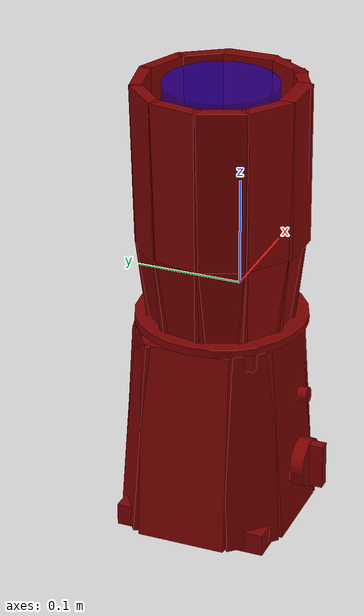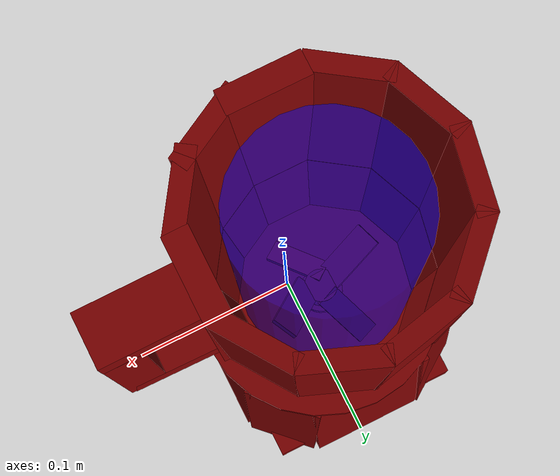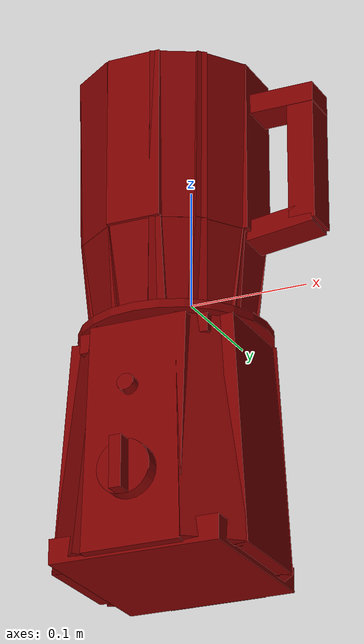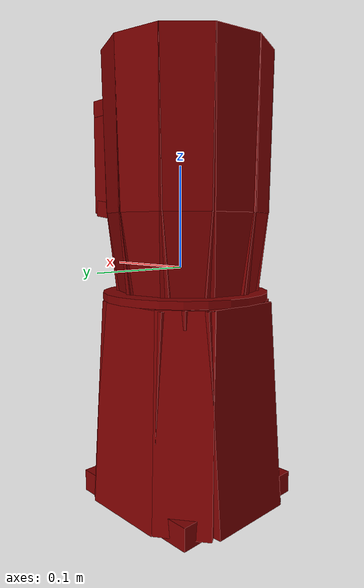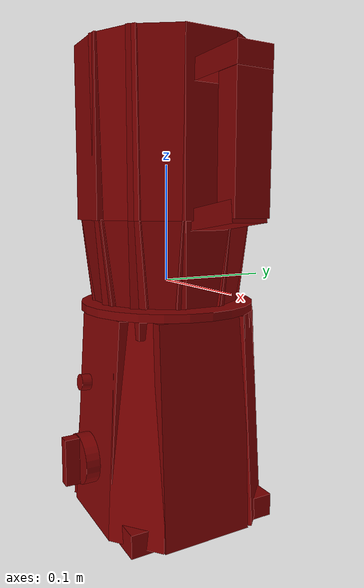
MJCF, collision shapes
<?xml version='1.0' encoding='UTF-8'?>
<mujoco model="model">
  <option timestep="0.002" gravity="0.0 0.0 -9.81"/>
  <compiler angle="radian"/>
  <asset>
    <mesh file="visuals/blade.obj" name="blade_vis"/>
    <mesh file="visuals/Body001.obj" name="Body001_vis"/>
    <mesh file="visuals/power_button.obj" name="power_button_vis"/>
    <mesh file="visuals/pitcher.obj" name="pitcher_vis"/>
    <mesh file="visuals/pitcher_main.obj" name="pitcher_main_vis"/>
    <mesh file="visuals/knob_speed.obj" name="knob_speed_vis"/>
    <texture file="visuals/T_BC001.png" name="Body001_material" type="2d"/>
    <material name="Body001_material" rgba="1 1 1 1.0" texture="Body001_material" shininess="0.4472135901451111" specular="1"/>
    <texture file="visuals/T_BC001.png" name="power_button_material" type="2d"/>
    <material name="power_button_material" rgba="1 1 1 1.0" texture="power_button_material" shininess="0.4472135901451111" specular="1"/>
    <texture file="visuals/T_BC001.png" name="pitcher_material" type="2d"/>
    <material name="pitcher_material" rgba="1 1 1 1.0" texture="pitcher_material" shininess="0.4472135901451111" specular="1"/>
    <texture file="visuals/T_BC001.png" name="blade_material" type="2d"/>
    <material name="blade_material" rgba="1 1 1 1.0" texture="blade_material" shininess="0.4472135901451111" specular="1"/>
    <material name="pitcher_main_material" rgba="0.5881999731063843 0.5881999731063843 0.5881999731063843 0.800000011920929" shininess="0.10000002384185791" specular="0.33333333333333337"/>
    <texture file="visuals/T_BC001.png" name="knob_speed_material" type="2d"/>
    <material name="knob_speed_material" rgba="1 1 1 1.0" texture="knob_speed_material" shininess="0.4472135901451111" specular="1"/>
  </asset>
  <default>
    <default class="visual">
      <geom conaffinity="0" contype="0" group="1" type="mesh"/>
    </default>
    <default class="collision">
      <geom group="0" rgba="0.5 0 0 0.5" density="1.0" solref="0.004 1" solimp="0.998 0.998 0.001"/>
    </default>
    <default class="spawn">
      <geom group="0" rgba="1 1 1 0.5" contype="0" conaffinity="0"/>
      <site group="0" rgba="1 1 1 0.5"/>
    </default>
    <default class="region">
      <geom group="1" conaffinity="0" contype="0" rgba="0 1 0 0" mass="0"/>
    </default>
  </default>
  <worldbody>
    <body>
      <body name="object">
        <geom mesh="Body001_vis" type="mesh" solimp="0.998 0.998 0.001" solref="0.001 1" friction="0.95 0.3 0.1" class="visual" material="Body001_material"/>
        <geom type="box" pos="-0.09515609 0.01476613 -0.12396966" size="0.0054743182845413685 0.04164137691259384 0.09551781415939331" quat="0.9992919564247131 0.0 0.03762416914105415 0.0" class="collision"/>
        <geom type="box" pos="-0.02070477 -0.05600017 -0.12523258" size="0.0054743182845413685 0.04164137691259384 0.09551780670881271" quat="0.706755518913269 -0.02228604629635811 0.02228604629635811 0.7067554593086243" class="collision"/>
        <geom type="box" pos="0.05176017 0.00713336 -0.12396966" size="0.005474318750202656 0.04164137691259384 0.09551782160997391" quat="7.546636027200293e-08 -0.028901977464556694 2.1820385498472206e-09 0.9995822310447693" class="collision"/>
        <geom type="box" pos="-0.01956251 0.08019558 -0.12528173" size="0.0054743182845413685 0.04164137691259384 0.09551781415939331" quat="0.7067351937294006 0.022921277210116386 0.02292126789689064 -0.7067351937294006" class="collision"/>
        <geom type="box" pos="-0.07630777 0.06757122 -0.12396966" size="0.005474318750202656 0.025623897090554237 0.09551780670881271" quat="0.8883739113807678 0.017228038981556892 0.03344782441854477 -0.4575764536857605" class="collision"/>
        <geom type="box" pos="0.03633293 0.06375368 -0.12396966" size="0.005474317818880081 0.025623897090554237 0.09551780670881271" quat="0.3789641857147217 0.02674451470375061 0.010957477614283562 -0.9249598979949951" class="collision"/>
        <geom type="box" pos="0.03317800 -0.04134386 -0.12396966" size="0.0054743182845413685 0.025623897090554237 0.09551780670881271" quat="0.4256477653980255 -0.04192516580224037 0.01974695920944214 0.9037014842033386" class="collision"/>
        <geom type="box" pos="-0.07742481 -0.03855716 -0.12396966" size="0.0054743182845413685 0.025623897090554237 0.09551780670881271" quat="0.9243523478507996 -0.017569629475474358 0.04288322851061821 0.37871503829956055" class="collision"/>
        <geom type="box" pos="-0.02167261 0.01204293 -0.21243714" size="0.0717238336801529 0.0717238336801529 0.010338559746742249" quat="1.0 0.0 0.0 0.0" class="collision"/>
        <geom type="box" pos="-0.02167261 0.01204293 -0.03638610" size="0.055709511041641235 0.055709511041641235 0.008030197583138943" quat="1.0 0.0 0.0 0.0" class="collision"/>
        <body name="power_button">
          <joint axis="0.0 1.0 0.0" pos="-0.02125863 -0.07110283 -0.08987315" limited="true" name="power_button_joint" range="0.0 0.003" type="slide" damping="1" frictionloss="1" armature=".01" stiffness="0.5" springref="-0.5"/>
          <geom mesh="power_button_vis" type="mesh" solimp="0.998 0.998 0.001" solref="0.001 1" friction="0.95 0.3 0.1" class="visual" material="power_button_material"/>
          <geom class="collision" type="cylinder" pos="-0.02125863 -0.07136320 -0.08984661" size="0.007087751291692257 0.004477208014577627" quat="0.7420973181724548 0.6702921390533447 0.0 0.0" name="power_button_main"/>
        </body>
        <body name="pitcher">
          <geom mesh="pitcher_vis" type="mesh" solimp="0.998 0.998 0.001" solref="0.001 1" friction="0.95 0.3 0.1" class="visual" material="pitcher_material"/>
          <geom type="cylinder" pos="-0.01826130 0.01058441 -0.01807209" size="0.013563878834247589 0.0030004368163645267" quat="0.70710688829422 0.0 0.0 -0.7071066498756409" class="collision"/>
          <geom class="collision" type="box" pos="0.08159569 0.01001288 0.16783240" size="0.02891906350851059 0.015560477040708065 0.008479948155581951" quat="1.0 0.0 0.0 0.0" name="pitcher_handle_1"/>
          <geom class="collision" type="box" pos="0.09916771 0.01001288 0.10729443" size="0.011199464090168476 0.015560487285256386 0.051797185093164444" quat="1.0 0.0 0.0 0.0" name="pitcher_handle_2"/>
          <geom class="collision" type="box" pos="0.07771460 0.01001288 0.05714760" size="0.02946845255792141 0.015560523606836796 0.00854925811290741" quat="0.9980339407920837 0.0 -0.06267547607421875 0.0" name="pitcher_handle_0"/>
          <geom type="cylinder" pos="-0.01792707 0.01009008 -0.02435832" size="0.07933948934078217 0.0035974886268377304" quat="1.0 0.0 0.0 0.0" class="collision"/>
          <body name="blade">
            <geom mesh="blade_vis" type="mesh" solimp="0.998 0.998 0.001" solref="0.001 1" friction="0.95 0.3 0.1" class="visual" material="blade_material"/>
            <geom type="box" pos="0.00204605 0.01669492 0.00917565" size="0.0015862119616940618 0.018787633627653122 0.008514349348843098" quat="0.22424311935901642 0.4206318259239197 -0.4267450273036957 0.7685522437095642" class="collision"/>
            <geom type="box" pos="-0.04108375 0.00226118 0.00607678" size="0.0014495250070467591 0.018787631765007973 0.00851509440690279" quat="0.46829313039779663 0.6533452272415161 -0.34451261162757874 0.48492538928985596" class="collision"/>
            <geom type="box" pos="-0.01246180 -0.01041368 -0.00240662" size="0.0014507644809782505 0.018769260495901108 0.00669638067483902" quat="0.3194257915019989 -0.6354911923408508 -0.12435971200466156 -0.6918473839759827" class="collision"/>
            <geom type="box" pos="-0.02522345 0.03246708 -0.00698720" size="0.001831724657677114 0.01876925863325596 0.007409302052110434" quat="0.037183113396167755 0.6721182465553284 0.3039575219154358 0.67415452003479" class="collision"/>
            <geom type="cylinder" pos="-0.01812364 0.01042146 -0.00537061" size="0.010318148881196976 0.008342823013663292" quat="1.0 0.0 0.0 0.0" class="collision"/>
          </body>
          <body name="pitcher_main">
            <geom class="region" type="cylinder" size="0.05175633355975151 0.08882526308298111" pos="-0.02064804 0.00991137 0.11059178" rgba="0 0 1 0.5" name="reg_int"/>
            <geom mesh="pitcher_main_vis" type="mesh" solimp="0.998 0.998 0.001" solref="0.001 1" friction="0.95 0.3 0.1" class="visual" material="pitcher_main_material"/>
            <geom type="box" pos="-0.02086875 -0.05912482 0.12695498" size="0.023175766691565514 0.007076061796396971 0.07389082759618759" quat="1.0 0.0 0.0 0.0" class="collision"/>
            <geom type="box" pos="-0.02086875 -0.05295889 0.01770921" size="0.023175908252596855 0.005516691133379936 0.03700769692659378" quat="0.9981673955917358 0.06051315739750862 0.0 0.0" class="collision"/>
            <geom type="box" pos="-0.06003613 -0.04693161 0.12695498" size="0.023175911977887154 0.005516692530363798 0.07379065454006195" quat="0.9549254775047302 0.010099019855260849 -0.003137363586574793 -0.2966572344303131" class="collision"/>
            <geom type="box" pos="-0.05654230 -0.04185108 0.01770921" size="0.023175908252596855 0.005516690202057362 0.03700769692659378" quat="0.953228771686554 0.05778857693076134 -0.017952607944607735 -0.29613015055656433" class="collision"/>
            <geom type="box" pos="-0.07916146 -0.01370328 0.01770921" size="0.023175908252596855 0.005516691133379936 0.03700769692659378" quat="0.8282976746559143 0.05021476000547409 -0.03376825898885727 -0.5570108890533447" class="collision"/>
            <geom type="box" pos="-0.08487194 -0.01602906 0.12695498" size="0.023175911977887154 0.005516692530363798 0.07379065454006195" quat="0.8297720551490784 0.008775432594120502 -0.0059012724086642265 -0.558002233505249" class="collision"/>
            <geom type="box" pos="-0.08871573 0.02308562 0.12695498" size="0.023175911977887154 0.0055166929960250854 0.07379065454006195" quat="0.6369348168373108 0.006736038718372583 -0.008152233436703682 -0.7708451151847839" class="collision"/>
            <geom type="box" pos="-0.08266037 0.02192311 0.01770921" size="0.023175908252596855 0.005516691133379936 0.03700769692659378" quat="0.6358030438423157 0.03854496777057648 -0.04664872959256172 -0.7694755792617798" class="collision"/>
            <geom type="box" pos="-0.06591754 0.05396626 0.01770921" size="0.023175908252596855 0.005516690202057362 0.03700769692659378" quat="0.38814669847488403 0.023531027138233185 -0.05575042590498924 -0.9196087718009949" class="collision"/>
            <geom type="box" pos="-0.07033549 0.05826747 0.12695498" size="0.023175911977887154 0.005516692530363798 0.07379065454006195" quat="0.3888375759124756 0.004112234804779291 -0.009742825292050838 -0.9212456345558167" class="collision"/>
            <geom type="box" pos="-0.03564053 0.07754081 0.12695500" size="0.023175911977887154 0.005516692530363798 0.07379065454006195" quat="0.10804449766874313 0.001142653520219028 -0.01051327120512724 -0.9940897822380066" class="collision"/>
            <geom type="box" pos="-0.03431587 0.07151885 0.01770921" size="0.023175908252596855 0.005516691133379936 0.03700769692659378" quat="0.1078525260090828 0.006538454908877611 -0.06015866994857788 -0.9923235177993774" class="collision"/>
            <geom type="box" pos="0.00226276 0.06859405 0.01770921" size="0.023175908252596855 0.005516691133379936 0.03700769692659378" quat="0.18596415221691132 0.011273913085460663 0.059453509747982025 0.9806913733482361" class="collision"/>
            <geom type="box" pos="0.00452003 0.07433193 0.12695500" size="0.023175911977887154 0.005516692530363798 0.07379065454006195" quat="0.1862950325012207 0.001970204059034586 0.010389959439635277 0.9824369549751282" class="collision"/>
            <geom type="box" pos="0.03642788 0.04876017 0.12695500" size="0.023175911977887154 0.0055166929960250854 0.07379065454006195" quat="0.46849510073661804 0.00495466822758317 0.009342609904706478 0.8834028244018555" class="collision"/>
            <geom type="box" pos="0.03132352 0.04530124 0.01770921" size="0.023175908252596855 0.005516690202057362 0.03700769692659378" quat="0.4676626920700073 0.028351616114377975 0.053460318595170975 0.8818331956863403" class="collision"/>
            <geom type="box" pos="0.04214088 0.00965553 0.01770921" size="0.023175908252596855 0.005516690202057362 0.03700769692659378" quat="0.7075697779655457 0.042895764112472534 0.042682234197854996 0.7040477395057678" class="collision"/>
            <geom type="box" pos="0.04830674 0.00962476 0.12695500" size="0.00719159422442317 0.023210931569337845 0.07389082759618759" quat="1.0 0.0 0.0 0.0" class="collision"/>
            <geom type="box" pos="0.03669833 -0.02833604 0.12695500" size="0.023175911977887154 0.005516692530363798 0.07379065454006195" quat="0.8814740777015686 0.00932223442941904 0.004992952570319176 0.4721139669418335" class="collision"/>
            <geom type="box" pos="0.03156578 -0.02491909 0.01770921" size="0.023175908252596855 0.005516690202057362 0.03700769692659378" quat="0.87990802526474 0.05334360897541046 0.02857060730457306 0.4712749421596527" class="collision"/>
            <geom type="box" pos="0.00905607 -0.04541609 0.01770921" size="0.023175908252596855 0.005516691133379936 0.03700769692659378" quat="0.9677349925041199 0.058668024837970734 0.014828402549028397 0.2445959448814392" class="collision"/>
            <geom type="box" pos="0.01198580 -0.05084152 0.12695500" size="0.023175911977887154 0.005516692530363798 0.07379065454006195" quat="0.9694575071334839 0.010252677835524082 0.002591376891359687 0.24503132700920105" class="collision"/>
          </body>
        </body>
        <body name="knob_speed">
          <joint axis="0.0 1.0 0.0" pos="-0.02082800 -0.08041372 -0.16011650" limited="true" name="knob_speed_joint" range="0.0 3.752457891787808" type="hinge" damping="0.05" frictionloss="0.1" armature="0.001"/>
          <geom mesh="knob_speed_vis" type="mesh" solimp="0.998 0.998 0.001" solref="0.001 1" friction="0.95 0.3 0.1" class="visual" material="knob_speed_material"/>
          <geom type="cylinder" pos="-0.02082819 -0.07287767 -0.16011688" size="0.02244795672595501 0.006288353819400072" quat="0.7071068286895752 0.7071067690849304 0.0 0.0" class="collision" density="0.001"/>
          <geom class="collision" type="box" pos="-0.02107506 -0.08411061 -0.16031808" size="0.004999999888241291 0.008138016797602177 0.02128095179796219" quat="1.0 0.0 0.0 0.0" name="knob_speed_main" density="0.001"/>
        </body>
        <geom class="region" name="reg_main" type="box" pos="-0.023092945000000004 0.009251599999999999 0.0010035000000000044" size="0.087257055 0.08420555 0.22637592"/>
      </body>
      <site rgba="0 1 0 0" size="0.005" pos="-0.02082781 0.01001121 0.20801517" name="anchor_site"/>
    </body>
  </worldbody>
  <actuator>
    <motor name="power_button_joint_actuator" joint="power_button_joint" gear="0.5"/>
    <motor name="knob_speed_joint_actuator" joint="knob_speed_joint" gear="10"/>
  </actuator>
</mujoco>
